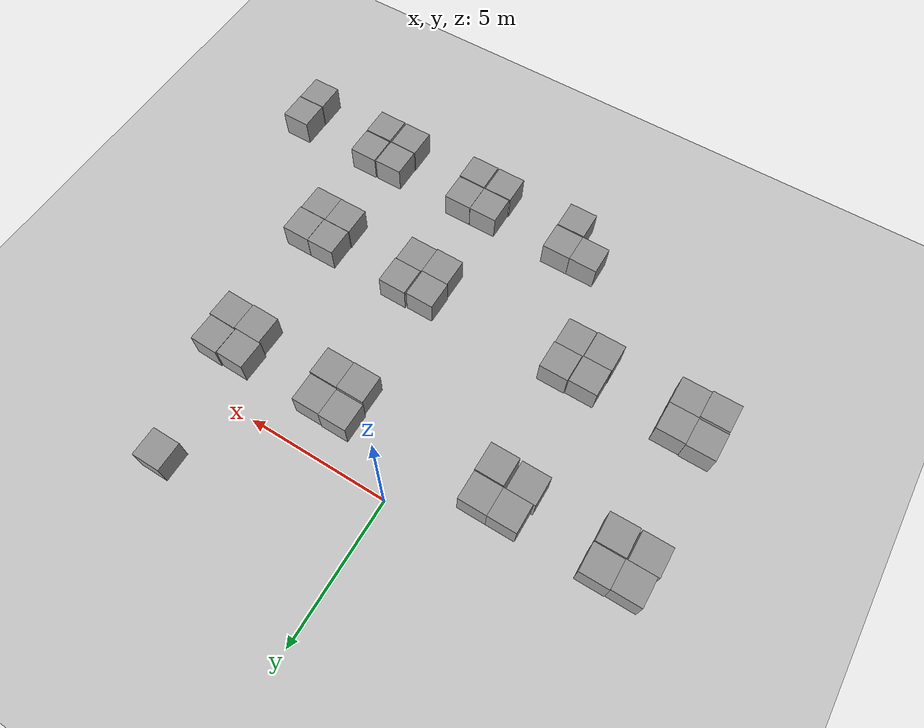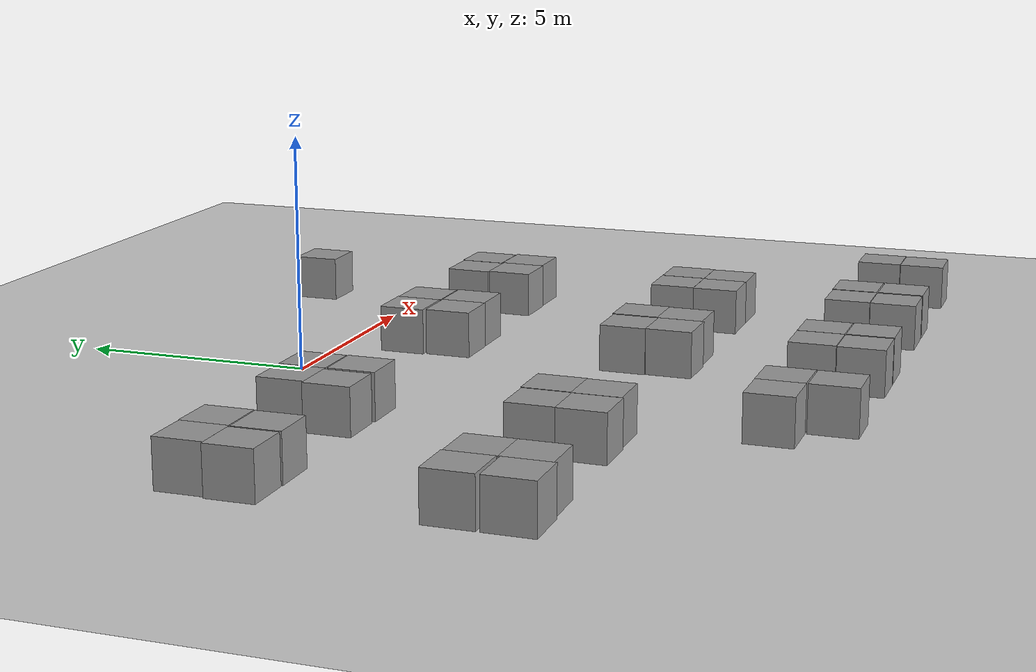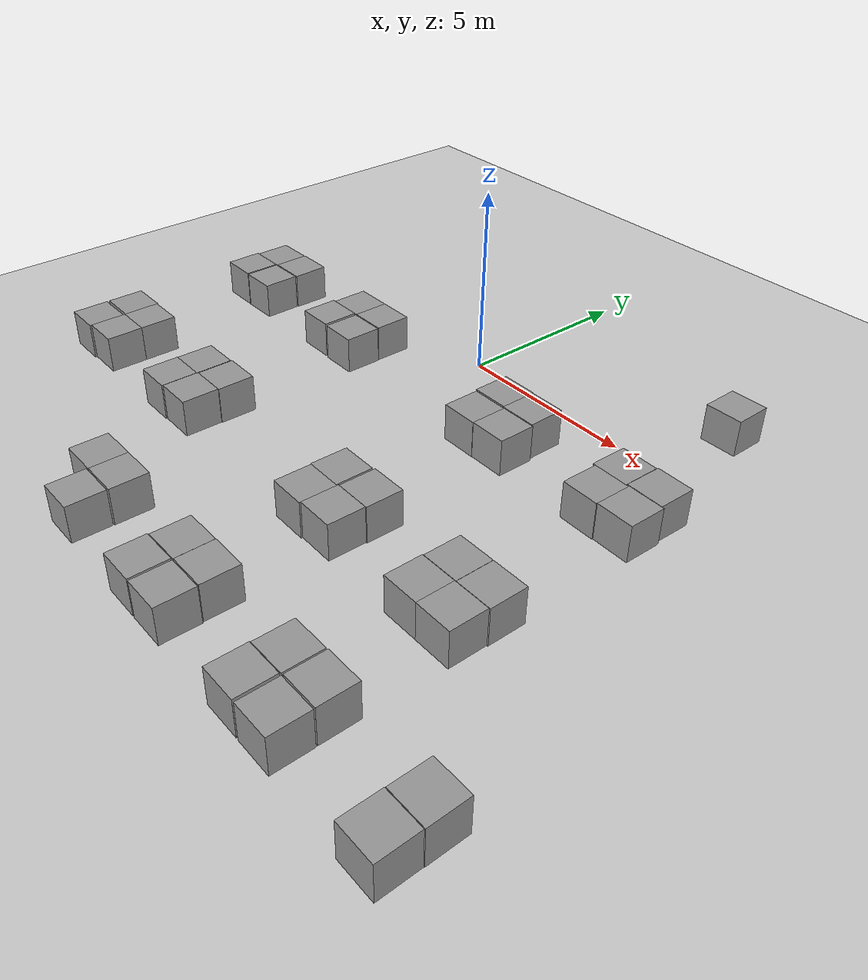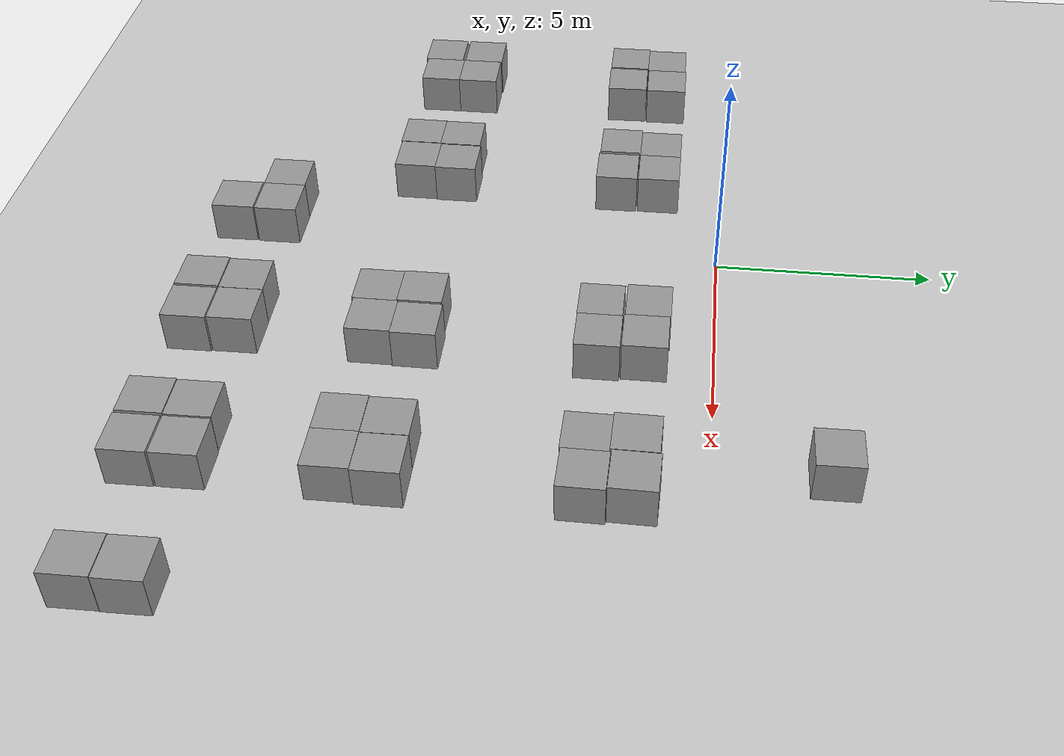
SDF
<sdf version="1.7">
 <world name="default">
  <model name="ground_plane">
   <static>1</static>
   <link name="link">
    <collision name="collision">
     <geometry><plane><normal>0 0 1</normal><size>100 100</size></plane></geometry>
     <surface>
      <contact><collide_bitmask>65535</collide_bitmask></contact>
      <friction><ode><mu>100</mu><mu2>50</mu2></ode></friction>
     </surface>
    </collision>
    <visual name="visual">
     <cast_shadows>0</cast_shadows>
     <geometry><plane><normal>0 0 1</normal><size>100 100</size></plane></geometry>
     <material>
      <script><uri>file://media/materials/scripts/gazebo.material</uri><name>Gazebo/Grey</name></script>
     </material>
    </visual>
   </link>
  </model>
  <model name="unit_box_clone_1_clone_clone_1">
   <pose>6.51987 2.46883 0.499995 -1e-05 0 0.004052</pose>
   <link name="link">
    <inertial>
     <mass>1</mass>
     <inertia>
      <ixx>0.166667</ixx>
      <ixy>0</ixy>
      <ixz>0</ixz>
      <iyy>0.166667</iyy>
      <iyz>0</iyz>
      <izz>0.166667</izz>
     </inertia>
    </inertial>
    <collision name="collision"><geometry><box><size>1 1 1</size></box></geometry></collision>
    <visual name="visual">
     <geometry><box><size>1 1 1</size></box></geometry>
     <material>
      <script><name>Gazebo/Grey</name><uri>file://media/materials/scripts/gazebo.material</uri></script>
     </material>
    </visual>
   </link>
  </model>
  <model name="unit_box_clone_1_clone_clone_2">
   <pose>7.48276 -7.51491 0.499995 1e-05 -0 8e-06</pose>
   <link name="link">
    <inertial>
     <mass>1</mass>
     <inertia>
      <ixx>0.166667</ixx>
      <ixy>0</ixy>
      <ixz>0</ixz>
      <iyy>0.166667</iyy>
      <iyz>0</iyz>
      <izz>0.166667</izz>
     </inertia>
    </inertial>
    <collision name="collision"><geometry><box><size>1 1 1</size></box></geometry></collision>
    <visual name="visual">
     <geometry><box><size>1 1 1</size></box></geometry>
     <material>
      <script><name>Gazebo/Grey</name><uri>file://media/materials/scripts/gazebo.material</uri></script>
     </material>
    </visual>
   </link>
  </model>
  <model name="unit_box_clone_1_clone_clone_2_clone">
   <pose>6.48274 -7.51491 0.499995 0 -1e-05 6e-06</pose>
   <link name="link">
    <inertial>
     <mass>1</mass>
     <inertia>
      <ixx>0.166667</ixx>
      <ixy>0</ixy>
      <ixz>0</ixz>
      <iyy>0.166667</iyy>
      <iyz>0</iyz>
      <izz>0.166667</izz>
     </inertia>
    </inertial>
    <collision name="collision"><geometry><box><size>1 1 1</size></box></geometry></collision>
    <visual name="visual">
     <geometry><box><size>1 1 1</size></box></geometry>
     <material>
      <script><name>Gazebo/Grey</name><uri>file://media/materials/scripts/gazebo.material</uri></script>
     </material>
    </visual>
   </link>
  </model>
  <model name="unit_box_clone_1_clone_clone_2_clone_0">
   <pose>7.5119 -6.50947 0.499995 0 -1e-05 0</pose>
   <link name="link">
    <inertial>
     <mass>1</mass>
     <inertia>
      <ixx>0.166667</ixx>
      <ixy>0</ixy>
      <ixz>0</ixz>
      <iyy>0.166667</iyy>
      <iyz>0</iyz>
      <izz>0.166667</izz>
     </inertia>
    </inertial>
    <collision name="collision"><geometry><box><size>1 1 1</size></box></geometry></collision>
    <visual name="visual">
     <geometry><box><size>1 1 1</size></box></geometry>
     <material>
      <script><name>Gazebo/Grey</name><uri>file://media/materials/scripts/gazebo.material</uri></script>
     </material>
    </visual>
   </link>
  </model>
  <model name="unit_box_clone_1_clone_clone_2_clone_1">
   <pose>6.50647 -6.50947 0.499995 0 -1e-05 0</pose>
   <link name="link">
    <inertial>
     <mass>1</mass>
     <inertia>
      <ixx>0.166667</ixx>
      <ixy>0</ixy>
      <ixz>0</ixz>
      <iyy>0.166667</iyy>
      <iyz>0</iyz>
      <izz>0.166667</izz>
     </inertia>
    </inertial>
    <collision name="collision"><geometry><box><size>1 1 1</size></box></geometry></collision>
    <visual name="visual">
     <geometry><box><size>1 1 1</size></box></geometry>
     <material>
      <script><name>Gazebo/Grey</name><uri>file://media/materials/scripts/gazebo.material</uri></script>
     </material>
    </visual>
   </link>
  </model>
  <model name="unit_box_clone_1_clone_clone_2_clone_2">
   <pose>7.54327 -2.5164 0.499995 -1e-05 0 -0.018265</pose>
   <link name="link">
    <inertial>
     <mass>1</mass>
     <inertia>
      <ixx>0.166667</ixx>
      <ixy>0</ixy>
      <ixz>0</ixz>
      <iyy>0.166667</iyy>
      <iyz>0</iyz>
      <izz>0.166667</izz>
     </inertia>
    </inertial>
    <collision name="collision"><geometry><box><size>1 1 1</size></box></geometry></collision>
    <visual name="visual">
     <geometry><box><size>1 1 1</size></box></geometry>
     <material>
      <script><name>Gazebo/Grey</name><uri>file://media/materials/scripts/gazebo.material</uri></script>
     </material>
    </visual>
   </link>
  </model>
  <model name="unit_box_clone_1_clone_clone_2_clone_3">
   <pose>6.54296 -2.52368 0.499995 -0 -1e-05 -0.01826</pose>
   <link name="link">
    <inertial>
     <mass>1</mass>
     <inertia>
      <ixx>0.166667</ixx>
      <ixy>0</ixy>
      <ixz>0</ixz>
      <iyy>0.166667</iyy>
      <iyz>0</iyz>
      <izz>0.166667</izz>
     </inertia>
    </inertial>
    <collision name="collision"><geometry><box><size>1 1 1</size></box></geometry></collision>
    <visual name="visual">
     <geometry><box><size>1 1 1</size></box></geometry>
     <material>
      <script><name>Gazebo/Grey</name><uri>file://media/materials/scripts/gazebo.material</uri></script>
     </material>
    </visual>
   </link>
  </model>
  <model name="unit_box_clone_1_clone_clone_2_clone_4">
   <pose>7.49705 -1.50526 0.499995 -1e-05 0 -0.023231</pose>
   <link name="link">
    <inertial>
     <mass>1</mass>
     <inertia>
      <ixx>0.166667</ixx>
      <ixy>0</ixy>
      <ixz>0</ixz>
      <iyy>0.166667</iyy>
      <iyz>0</iyz>
      <izz>0.166667</izz>
     </inertia>
    </inertial>
    <collision name="collision"><geometry><box><size>1 1 1</size></box></geometry></collision>
    <visual name="visual">
     <geometry><box><size>1 1 1</size></box></geometry>
     <material>
      <script><name>Gazebo/Grey</name><uri>file://media/materials/scripts/gazebo.material</uri></script>
     </material>
    </visual>
   </link>
  </model>
  <model name="unit_box_clone_1_clone_clone_2_clone_5">
   <pose>6.48657 -1.52244 0.499995 1e-05 -0 -0.018282</pose>
   <link name="link">
    <inertial>
     <mass>1</mass>
     <inertia>
      <ixx>0.166667</ixx>
      <ixy>0</ixy>
      <ixz>0</ixz>
      <iyy>0.166667</iyy>
      <iyz>0</iyz>
      <izz>0.166667</izz>
     </inertia>
    </inertial>
    <collision name="collision"><geometry><box><size>1 1 1</size></box></geometry></collision>
    <visual name="visual">
     <geometry><box><size>1 1 1</size></box></geometry>
     <material>
      <script><name>Gazebo/Grey</name><uri>file://media/materials/scripts/gazebo.material</uri></script>
     </material>
    </visual>
   </link>
  </model>
  <model name="unit_box_clone_0_clone_7">
   <pose>3.50174 -1.50026 0.499995 0 -1e-05 -0.002186</pose>
   <link name="link">
    <inertial>
     <mass>1</mass>
     <inertia>
      <ixx>0.166667</ixx>
      <ixy>0</ixy>
      <ixz>0</ixz>
      <iyy>0.166667</iyy>
      <iyz>0</iyz>
      <izz>0.166667</izz>
     </inertia>
    </inertial>
    <collision name="collision"><geometry><box><size>1 1 1</size></box></geometry></collision>
    <visual name="visual">
     <geometry><box><size>1 1 1</size></box></geometry>
     <material>
      <script><name>Gazebo/Grey</name><uri>file://media/materials/scripts/gazebo.material</uri></script>
     </material>
    </visual>
   </link>
  </model>
  <model name="unit_box_clone_0_clone_8">
   <pose>2.50178 -1.47971 0.499995 -0 -1e-05 -0.002182</pose>
   <link name="link">
    <inertial>
     <mass>1</mass>
     <inertia>
      <ixx>0.166667</ixx>
      <ixy>0</ixy>
      <ixz>0</ixz>
      <iyy>0.166667</iyy>
      <iyz>0</iyz>
      <izz>0.166667</izz>
     </inertia>
    </inertial>
    <collision name="collision"><geometry><box><size>1 1 1</size></box></geometry></collision>
    <visual name="visual">
     <geometry><box><size>1 1 1</size></box></geometry>
     <material>
      <script><name>Gazebo/Grey</name><uri>file://media/materials/scripts/gazebo.material</uri></script>
     </material>
    </visual>
   </link>
  </model>
  <model name="unit_box_clone_0_clone_9">
   <pose>3.55665 -2.52621 0.499995 -0 1e-05 -0.005196</pose>
   <link name="link">
    <inertial>
     <mass>1</mass>
     <inertia>
      <ixx>0.166667</ixx>
      <ixy>0</ixy>
      <ixz>0</ixz>
      <iyy>0.166667</iyy>
      <iyz>0</iyz>
      <izz>0.166667</izz>
     </inertia>
    </inertial>
    <collision name="collision"><geometry><box><size>1 1 1</size></box></geometry></collision>
    <visual name="visual">
     <geometry><box><size>1 1 1</size></box></geometry>
     <material>
      <script><name>Gazebo/Grey</name><uri>file://media/materials/scripts/gazebo.material</uri></script>
     </material>
    </visual>
   </link>
  </model>
  <model name="unit_box_clone_0_clone_10">
   <pose>2.55658 -2.53131 0.499995 0 -1e-05 -0.005201</pose>
   <link name="link">
    <inertial>
     <mass>1</mass>
     <inertia>
      <ixx>0.166667</ixx>
      <ixy>0</ixy>
      <ixz>0</ixz>
      <iyy>0.166667</iyy>
      <iyz>0</iyz>
      <izz>0.166667</izz>
     </inertia>
    </inertial>
    <collision name="collision"><geometry><box><size>1 1 1</size></box></geometry></collision>
    <visual name="visual">
     <geometry><box><size>1 1 1</size></box></geometry>
     <material>
      <script><name>Gazebo/Grey</name><uri>file://media/materials/scripts/gazebo.material</uri></script>
     </material>
    </visual>
   </link>
  </model>
  <model name="unit_box_clone_0_clone_11">
   <pose>3.56399 -6.48035 0.499995 1e-05 -0 -0.006849</pose>
   <link name="link">
    <inertial>
     <mass>1</mass>
     <inertia>
      <ixx>0.166667</ixx>
      <ixy>0</ixy>
      <ixz>0</ixz>
      <iyy>0.166667</iyy>
      <iyz>0</iyz>
      <izz>0.166667</izz>
     </inertia>
    </inertial>
    <collision name="collision"><geometry><box><size>1 1 1</size></box></geometry></collision>
    <visual name="visual">
     <geometry><box><size>1 1 1</size></box></geometry>
     <material>
      <script><name>Gazebo/Grey</name><uri>file://media/materials/scripts/gazebo.material</uri></script>
     </material>
    </visual>
   </link>
  </model>
  <model name="unit_box_clone_0_clone_12">
   <pose>3.53165 -7.48098 0.499995 1e-05 -0 -0.008576</pose>
   <link name="link">
    <inertial>
     <mass>1</mass>
     <inertia>
      <ixx>0.166667</ixx>
      <ixy>0</ixy>
      <ixz>0</ixz>
      <iyy>0.166667</iyy>
      <iyz>0</iyz>
      <izz>0.166667</izz>
     </inertia>
    </inertial>
    <collision name="collision"><geometry><box><size>1 1 1</size></box></geometry></collision>
    <visual name="visual">
     <geometry><box><size>1 1 1</size></box></geometry>
     <material>
      <script><name>Gazebo/Grey</name><uri>file://media/materials/scripts/gazebo.material</uri></script>
     </material>
    </visual>
   </link>
  </model>
  <model name="unit_box_clone_0_clone_13">
   <pose>2.51333 -6.51216 0.499995 1e-05 -0 -0.008823</pose>
   <link name="link">
    <inertial>
     <mass>1</mass>
     <inertia>
      <ixx>0.166667</ixx>
      <ixy>0</ixy>
      <ixz>0</ixz>
      <iyy>0.166667</iyy>
      <iyz>0</iyz>
      <izz>0.166667</izz>
     </inertia>
    </inertial>
    <collision name="collision"><geometry><box><size>1 1 1</size></box></geometry></collision>
    <visual name="visual">
     <geometry><box><size>1 1 1</size></box></geometry>
     <material>
      <script><name>Gazebo/Grey</name><uri>file://media/materials/scripts/gazebo.material</uri></script>
     </material>
    </visual>
   </link>
  </model>
  <model name="unit_box_clone_0_clone_14">
   <pose>2.53108 -7.51237 0.499995 0 1e-05 -0.008817</pose>
   <link name="link">
    <inertial>
     <mass>1</mass>
     <inertia>
      <ixx>0.166667</ixx>
      <ixy>0</ixy>
      <ixz>0</ixz>
      <iyy>0.166667</iyy>
      <iyz>0</iyz>
      <izz>0.166667</izz>
     </inertia>
    </inertial>
    <collision name="collision"><geometry><box><size>1 1 1</size></box></geometry></collision>
    <visual name="visual">
     <geometry><box><size>1 1 1</size></box></geometry>
     <material>
      <script><name>Gazebo/Grey</name><uri>file://media/materials/scripts/gazebo.material</uri></script>
     </material>
    </visual>
   </link>
  </model>
  <model name="unit_box_clone_0_clone_16_clone_11">
   <pose>-2.48826 -1.47823 0.499995 1e-05 0 -6.3e-05</pose>
   <link name="link">
    <inertial>
     <mass>1</mass>
     <inertia>
      <ixx>0.166667</ixx>
      <ixy>0</ixy>
      <ixz>0</ixz>
      <iyy>0.166667</iyy>
      <iyz>0</iyz>
      <izz>0.166667</izz>
     </inertia>
    </inertial>
    <collision name="collision"><geometry><box><size>1 1 1</size></box></geometry></collision>
    <visual name="visual">
     <geometry><box><size>1 1 1</size></box></geometry>
     <material>
      <script><name>Gazebo/Grey</name><uri>file://media/materials/scripts/gazebo.material</uri></script>
     </material>
    </visual>
   </link>
  </model>
  <model name="unit_box_clone_0_clone_16_clone_12">
   <pose>-2.47297 -2.50683 0.499995 1e-05 -0 -0.00013</pose>
   <link name="link">
    <inertial>
     <mass>1</mass>
     <inertia>
      <ixx>0.166667</ixx>
      <ixy>0</ixy>
      <ixz>0</ixz>
      <iyy>0.166667</iyy>
      <iyz>0</iyz>
      <izz>0.166667</izz>
     </inertia>
    </inertial>
    <collision name="collision"><geometry><box><size>1 1 1</size></box></geometry></collision>
    <visual name="visual">
     <geometry><box><size>1 1 1</size></box></geometry>
     <material>
      <script><name>Gazebo/Grey</name><uri>file://media/materials/scripts/gazebo.material</uri></script>
     </material>
    </visual>
   </link>
  </model>
  <model name="unit_box_clone_0_clone_16_clone_13">
   <pose>-3.4883 -1.4782 0.499995 1e-05 0 -0.000127</pose>
   <link name="link">
    <inertial>
     <mass>1</mass>
     <inertia>
      <ixx>0.166667</ixx>
      <ixy>0</ixy>
      <ixz>0</ixz>
      <iyy>0.166667</iyy>
      <iyz>0</iyz>
      <izz>0.166667</izz>
     </inertia>
    </inertial>
    <collision name="collision"><geometry><box><size>1 1 1</size></box></geometry></collision>
    <visual name="visual">
     <geometry><box><size>1 1 1</size></box></geometry>
     <material>
      <script><name>Gazebo/Grey</name><uri>file://media/materials/scripts/gazebo.material</uri></script>
     </material>
    </visual>
   </link>
  </model>
  <model name="unit_box_clone_0_clone_16_clone_14">
   <pose>-3.56296 -2.47821 0.499995 0 1e-05 -0.000167</pose>
   <link name="link">
    <inertial>
     <mass>1</mass>
     <inertia>
      <ixx>0.166667</ixx>
      <ixy>0</ixy>
      <ixz>0</ixz>
      <iyy>0.166667</iyy>
      <iyz>0</iyz>
      <izz>0.166667</izz>
     </inertia>
    </inertial>
    <collision name="collision"><geometry><box><size>1 1 1</size></box></geometry></collision>
    <visual name="visual">
     <geometry><box><size>1 1 1</size></box></geometry>
     <material>
      <script><name>Gazebo/Grey</name><uri>file://media/materials/scripts/gazebo.material</uri></script>
     </material>
    </visual>
   </link>
  </model>
  <model name="unit_box_clone_0_clone_16_clone_15">
   <pose>-2.4909 -6.50485 0.499995 -0 1e-05 -0.004243</pose>
   <link name="link">
    <inertial>
     <mass>1</mass>
     <inertia>
      <ixx>0.166667</ixx>
      <ixy>0</ixy>
      <ixz>0</ixz>
      <iyy>0.166667</iyy>
      <iyz>0</iyz>
      <izz>0.166667</izz>
     </inertia>
    </inertial>
    <collision name="collision"><geometry><box><size>1 1 1</size></box></geometry></collision>
    <visual name="visual">
     <geometry><box><size>1 1 1</size></box></geometry>
     <material>
      <script><name>Gazebo/Grey</name><uri>file://media/materials/scripts/gazebo.material</uri></script>
     </material>
    </visual>
   </link>
  </model>
  <model name="unit_box_clone_0_clone_16_clone_16">
   <pose>-2.51952 -7.50478 0.499995 0 -1e-05 -0.004305</pose>
   <link name="link">
    <inertial>
     <mass>1</mass>
     <inertia>
      <ixx>0.166667</ixx>
      <ixy>0</ixy>
      <ixz>0</ixz>
      <iyy>0.166667</iyy>
      <iyz>0</iyz>
      <izz>0.166667</izz>
     </inertia>
    </inertial>
    <collision name="collision"><geometry><box><size>1 1 1</size></box></geometry></collision>
    <visual name="visual">
     <geometry><box><size>1 1 1</size></box></geometry>
     <material>
      <script><name>Gazebo/Grey</name><uri>file://media/materials/scripts/gazebo.material</uri></script>
     </material>
    </visual>
   </link>
  </model>
  <model name="unit_box_clone_0_clone_16_clone_17">
   <pose>-3.51522 -6.53044 0.499995 0 1e-05 -0.004559</pose>
   <link name="link">
    <inertial>
     <mass>1</mass>
     <inertia>
      <ixx>0.166667</ixx>
      <ixy>0</ixy>
      <ixz>0</ixz>
      <iyy>0.166667</iyy>
      <iyz>0</iyz>
      <izz>0.166667</izz>
     </inertia>
    </inertial>
    <collision name="collision"><geometry><box><size>1 1 1</size></box></geometry></collision>
    <visual name="visual">
     <geometry><box><size>1 1 1</size></box></geometry>
     <material>
      <script><name>Gazebo/Grey</name><uri>file://media/materials/scripts/gazebo.material</uri></script>
     </material>
    </visual>
   </link>
  </model>
  <model name="unit_box_clone_0_clone_16_clone_18">
   <pose>-3.53198 -7.53041 0.499995 0 -1e-05 -0.004522</pose>
   <link name="link">
    <inertial>
     <mass>1</mass>
     <inertia>
      <ixx>0.166667</ixx>
      <ixy>0</ixy>
      <ixz>0</ixz>
      <iyy>0.166667</iyy>
      <iyz>0</iyz>
      <izz>0.166667</izz>
     </inertia>
    </inertial>
    <collision name="collision"><geometry><box><size>1 1 1</size></box></geometry></collision>
    <visual name="visual">
     <geometry><box><size>1 1 1</size></box></geometry>
     <material>
      <script><name>Gazebo/Grey</name><uri>file://media/materials/scripts/gazebo.material</uri></script>
     </material>
    </visual>
   </link>
  </model>
  <model name="unit_box_clone_0_clone_16_clone_19">
   <pose>-6.47351 -1.46236 0.499995 -0 -1e-05 0.004737</pose>
   <link name="link">
    <inertial>
     <mass>1</mass>
     <inertia>
      <ixx>0.166667</ixx>
      <ixy>0</ixy>
      <ixz>0</ixz>
      <iyy>0.166667</iyy>
      <iyz>0</iyz>
      <izz>0.166667</izz>
     </inertia>
    </inertial>
    <collision name="collision"><geometry><box><size>1 1 1</size></box></geometry></collision>
    <visual name="visual">
     <geometry><box><size>1 1 1</size></box></geometry>
     <material>
      <script><name>Gazebo/Grey</name><uri>file://media/materials/scripts/gazebo.material</uri></script>
     </material>
    </visual>
   </link>
  </model>
  <model name="unit_box_clone_0_clone_16_clone_20">
   <pose>-7.47354 -1.48725 0.5 0 -0 0.004471</pose>
   <link name="link">
    <inertial>
     <mass>1</mass>
     <inertia>
      <ixx>0.166667</ixx>
      <ixy>0</ixy>
      <ixz>0</ixz>
      <iyy>0.166667</iyy>
      <iyz>0</iyz>
      <izz>0.166667</izz>
     </inertia>
    </inertial>
    <collision name="collision"><geometry><box><size>1 1 1</size></box></geometry></collision>
    <visual name="visual">
     <geometry><box><size>1 1 1</size></box></geometry>
     <material>
      <script><name>Gazebo/Grey</name><uri>file://media/materials/scripts/gazebo.material</uri></script>
     </material>
    </visual>
   </link>
  </model>
  <model name="unit_box_clone_0_clone_16_clone_21">
   <pose>-6.48631 -2.49199 0.499995 0 1e-05 0.013137</pose>
   <link name="link">
    <inertial>
     <mass>1</mass>
     <inertia>
      <ixx>0.166667</ixx>
      <ixy>0</ixy>
      <ixz>0</ixz>
      <iyy>0.166667</iyy>
      <iyz>0</iyz>
      <izz>0.166667</izz>
     </inertia>
    </inertial>
    <collision name="collision"><geometry><box><size>1 1 1</size></box></geometry></collision>
    <visual name="visual">
     <geometry><box><size>1 1 1</size></box></geometry>
     <material>
      <script><name>Gazebo/Grey</name><uri>file://media/materials/scripts/gazebo.material</uri></script>
     </material>
    </visual>
   </link>
  </model>
  <model name="unit_box_clone_0_clone_16_clone_22">
   <pose>-7.5313 -2.48775 0.499995 1e-05 -0 0.003976</pose>
   <link name="link">
    <inertial>
     <mass>1</mass>
     <inertia>
      <ixx>0.166667</ixx>
      <ixy>0</ixy>
      <ixz>0</ixz>
      <iyy>0.166667</iyy>
      <iyz>0</iyz>
      <izz>0.166667</izz>
     </inertia>
    </inertial>
    <collision name="collision"><geometry><box><size>1 1 1</size></box></geometry></collision>
    <visual name="visual">
     <geometry><box><size>1 1 1</size></box></geometry>
     <material>
      <script><name>Gazebo/Grey</name><uri>file://media/materials/scripts/gazebo.material</uri></script>
     </material>
    </visual>
   </link>
  </model>
  <model name="unit_box_clone_0_clone_16_clone_23">
   <pose>-6.50917 -6.5218 0.499995 -1e-05 -0 -0.002286</pose>
   <link name="link">
    <inertial>
     <mass>1</mass>
     <inertia>
      <ixx>0.166667</ixx>
      <ixy>0</ixy>
      <ixz>0</ixz>
      <iyy>0.166667</iyy>
      <iyz>0</iyz>
      <izz>0.166667</izz>
     </inertia>
    </inertial>
    <collision name="collision"><geometry><box><size>1 1 1</size></box></geometry></collision>
    <visual name="visual">
     <geometry><box><size>1 1 1</size></box></geometry>
     <material>
      <script><name>Gazebo/Grey</name><uri>file://media/materials/scripts/gazebo.material</uri></script>
     </material>
    </visual>
   </link>
  </model>
  <model name="unit_box_clone_0_clone_16_clone_24">
   <pose>-6.51146 -7.52182 0.499995 -1e-05 -0 -0.002304</pose>
   <link name="link">
    <inertial>
     <mass>1</mass>
     <inertia>
      <ixx>0.166667</ixx>
      <ixy>0</ixy>
      <ixz>0</ixz>
      <iyy>0.166667</iyy>
      <iyz>0</iyz>
      <izz>0.166667</izz>
     </inertia>
    </inertial>
    <collision name="collision"><geometry><box><size>1 1 1</size></box></geometry></collision>
    <visual name="visual">
     <geometry><box><size>1 1 1</size></box></geometry>
     <material>
      <script><name>Gazebo/Grey</name><uri>file://media/materials/scripts/gazebo.material</uri></script>
     </material>
    </visual>
   </link>
  </model>
  <model name="unit_box_clone_0_clone_16_clone_25">
   <pose>-7.50915 -6.49506 0.499995 1e-05 -0 -0.002276</pose>
   <link name="link">
    <inertial>
     <mass>1</mass>
     <inertia>
      <ixx>0.166667</ixx>
      <ixy>0</ixy>
      <ixz>0</ixz>
      <iyy>0.166667</iyy>
      <iyz>0</iyz>
      <izz>0.166667</izz>
     </inertia>
    </inertial>
    <collision name="collision"><geometry><box><size>1 1 1</size></box></geometry></collision>
    <visual name="visual">
     <geometry><box><size>1 1 1</size></box></geometry>
     <material>
      <script><name>Gazebo/Grey</name><uri>file://media/materials/scripts/gazebo.material</uri></script>
     </material>
    </visual>
   </link>
  </model>
  <model name="unit_box_clone_0_clone_16_clone_26">
   <pose>-7.51163 -7.56861 0.499995 1e-05 0 -0.002293</pose>
   <link name="link">
    <inertial>
     <mass>1</mass>
     <inertia>
      <ixx>0.166667</ixx>
      <ixy>0</ixy>
      <ixz>0</ixz>
      <iyy>0.166667</iyy>
      <iyz>0</iyz>
      <izz>0.166667</izz>
     </inertia>
    </inertial>
    <collision name="collision"><geometry><box><size>1 1 1</size></box></geometry></collision>
    <visual name="visual">
     <geometry><box><size>1 1 1</size></box></geometry>
     <material>
      <script><name>Gazebo/Grey</name><uri>file://media/materials/scripts/gazebo.material</uri></script>
     </material>
    </visual>
   </link>
  </model>
  <model name="unit_box_clone_3_clone_5">
   <pose>7.43558 -10.533 0.499995 1e-05 -0 0.002663</pose>
   <link name="link">
    <inertial>
     <mass>1</mass>
     <inertia>
      <ixx>0.166667</ixx>
      <ixy>0</ixy>
      <ixz>0</ixz>
      <iyy>0.166667</iyy>
      <iyz>0</iyz>
      <izz>0.166667</izz>
     </inertia>
    </inertial>
    <collision name="collision"><geometry><box><size>1 1 1</size></box></geometry></collision>
    <visual name="visual">
     <geometry><box><size>1 1 1</size></box></geometry>
     <material>
      <script><name>Gazebo/Grey</name><uri>file://media/materials/scripts/gazebo.material</uri></script>
     </material>
    </visual>
   </link>
  </model>
  <model name="unit_box_clone_3_clone_6">
   <pose>7.44548 -11.568 0.499995 0 -1e-05 0.002663</pose>
   <link name="link">
    <inertial>
     <mass>1</mass>
     <inertia>
      <ixx>0.166667</ixx>
      <ixy>0</ixy>
      <ixz>0</ixz>
      <iyy>0.166667</iyy>
      <iyz>0</iyz>
      <izz>0.166667</izz>
     </inertia>
    </inertial>
    <collision name="collision"><geometry><box><size>1 1 1</size></box></geometry></collision>
    <visual name="visual">
     <geometry><box><size>1 1 1</size></box></geometry>
     <material>
      <script><name>Gazebo/Grey</name><uri>file://media/materials/scripts/gazebo.material</uri></script>
     </material>
    </visual>
   </link>
  </model>
  <model name="unit_box_clone_3_clone_7">
   <pose>6.39684 -10.5526 0.499995 1e-05 -0 0.002663</pose>
   <link name="link">
    <inertial>
     <mass>1</mass>
     <inertia>
      <ixx>0.166667</ixx>
      <ixy>0</ixy>
      <ixz>0</ixz>
      <iyy>0.166667</iyy>
      <iyz>0</iyz>
      <izz>0.166667</izz>
     </inertia>
    </inertial>
    <collision name="collision"><geometry><box><size>1 1 1</size></box></geometry></collision>
    <visual name="visual">
     <geometry><box><size>1 1 1</size></box></geometry>
     <material>
      <script><name>Gazebo/Grey</name><uri>file://media/materials/scripts/gazebo.material</uri></script>
     </material>
    </visual>
   </link>
  </model>
  <model name="unit_box_clone_3_clone_8">
   <pose>6.37957 -11.5672 0.499995 -1e-05 -0 0.002663</pose>
   <link name="link">
    <inertial>
     <mass>1</mass>
     <inertia>
      <ixx>0.166667</ixx>
      <ixy>0</ixy>
      <ixz>0</ixz>
      <iyy>0.166667</iyy>
      <iyz>0</iyz>
      <izz>0.166667</izz>
     </inertia>
    </inertial>
    <collision name="collision"><geometry><box><size>1 1 1</size></box></geometry></collision>
    <visual name="visual">
     <geometry><box><size>1 1 1</size></box></geometry>
     <material>
      <script><name>Gazebo/Grey</name><uri>file://media/materials/scripts/gazebo.material</uri></script>
     </material>
    </visual>
   </link>
  </model>
  <model name="unit_box_clone_3_clone_9">
   <pose>3.45985 -10.5326 0.499995 1e-05 -0 0.002663</pose>
   <link name="link">
    <inertial>
     <mass>1</mass>
     <inertia>
      <ixx>0.166667</ixx>
      <ixy>0</ixy>
      <ixz>0</ixz>
      <iyy>0.166667</iyy>
      <iyz>0</iyz>
      <izz>0.166667</izz>
     </inertia>
    </inertial>
    <collision name="collision"><geometry><box><size>1 1 1</size></box></geometry></collision>
    <visual name="visual">
     <geometry><box><size>1 1 1</size></box></geometry>
     <material>
      <script><name>Gazebo/Grey</name><uri>file://media/materials/scripts/gazebo.material</uri></script>
     </material>
    </visual>
   </link>
  </model>
  <model name="unit_box_clone_3_clone_10">
   <pose>2.45731 -10.5421 0.499995 0 -1e-05 0.002663</pose>
   <link name="link">
    <inertial>
     <mass>1</mass>
     <inertia>
      <ixx>0.166667</ixx>
      <ixy>0</ixy>
      <ixz>0</ixz>
      <iyy>0.166667</iyy>
      <iyz>0</iyz>
      <izz>0.166667</izz>
     </inertia>
    </inertial>
    <collision name="collision"><geometry><box><size>1 1 1</size></box></geometry></collision>
    <visual name="visual">
     <geometry><box><size>1 1 1</size></box></geometry>
     <material>
      <script><name>Gazebo/Grey</name><uri>file://media/materials/scripts/gazebo.material</uri></script>
     </material>
    </visual>
   </link>
  </model>
  <model name="unit_box_clone_3_clone_11">
   <pose>-1.44883 -10.5247 0.5 0 0 -0.000204</pose>
   <link name="link">
    <inertial>
     <mass>1</mass>
     <inertia>
      <ixx>0.166667</ixx>
      <ixy>0</ixy>
      <ixz>0</ixz>
      <iyy>0.166667</iyy>
      <iyz>0</iyz>
      <izz>0.166667</izz>
     </inertia>
    </inertial>
    <collision name="collision"><geometry><box><size>1 1 1</size></box></geometry></collision>
    <visual name="visual">
     <geometry><box><size>1 1 1</size></box></geometry>
     <material>
      <script><name>Gazebo/Grey</name><uri>file://media/materials/scripts/gazebo.material</uri></script>
     </material>
    </visual>
   </link>
  </model>
  <model name="unit_box_clone_3_clone_12">
   <pose>-0.448831 -10.5184 0.5 0 -0 -0.000206</pose>
   <link name="link">
    <inertial>
     <mass>1</mass>
     <inertia>
      <ixx>0.166667</ixx>
      <ixy>0</ixy>
      <ixz>0</ixz>
      <iyy>0.166667</iyy>
      <iyz>0</iyz>
      <izz>0.166667</izz>
     </inertia>
    </inertial>
    <collision name="collision"><geometry><box><size>1 1 1</size></box></geometry></collision>
    <visual name="visual">
     <geometry><box><size>1 1 1</size></box></geometry>
     <material>
      <script><name>Gazebo/Grey</name><uri>file://media/materials/scripts/gazebo.material</uri></script>
     </material>
    </visual>
   </link>
  </model>
  <model name="unit_box_clone_3_clone_13">
   <pose>-0.459973 -11.5523 0.499995 1e-05 -0 0.002663</pose>
   <link name="link">
    <inertial>
     <mass>1</mass>
     <inertia>
      <ixx>0.166667</ixx>
      <ixy>0</ixy>
      <ixz>0</ixz>
      <iyy>0.166667</iyy>
      <iyz>0</iyz>
      <izz>0.166667</izz>
     </inertia>
    </inertial>
    <collision name="collision"><geometry><box><size>1 1 1</size></box></geometry></collision>
    <visual name="visual">
     <geometry><box><size>1 1 1</size></box></geometry>
     <material>
      <script><name>Gazebo/Grey</name><uri>file://media/materials/scripts/gazebo.material</uri></script>
     </material>
    </visual>
   </link>
  </model>
  <model name="unit_box_clone_3_clone_14">
   <pose>2.42726 -11.5612 0.499995 -1e-05 -0 0.002663</pose>
   <link name="link">
    <inertial>
     <mass>1</mass>
     <inertia>
      <ixx>0.166667</ixx>
      <ixy>0</ixy>
      <ixz>0</ixz>
      <iyy>0.166667</iyy>
      <iyz>0</iyz>
      <izz>0.166667</izz>
     </inertia>
    </inertial>
    <collision name="collision"><geometry><box><size>1 1 1</size></box></geometry></collision>
    <visual name="visual">
     <geometry><box><size>1 1 1</size></box></geometry>
     <material>
      <script><name>Gazebo/Grey</name><uri>file://media/materials/scripts/gazebo.material</uri></script>
     </material>
    </visual>
   </link>
  </model>
  <model name="unit_box_clone_3_clone_15">
   <pose>3.4836 -11.5594 0.499995 1e-05 -0 0.002663</pose>
   <link name="link">
    <inertial>
     <mass>1</mass>
     <inertia>
      <ixx>0.166667</ixx>
      <ixy>0</ixy>
      <ixz>0</ixz>
      <iyy>0.166667</iyy>
      <iyz>0</iyz>
      <izz>0.166667</izz>
     </inertia>
    </inertial>
    <collision name="collision"><geometry><box><size>1 1 1</size></box></geometry></collision>
    <visual name="visual">
     <geometry><box><size>1 1 1</size></box></geometry>
     <material>
      <script><name>Gazebo/Grey</name><uri>file://media/materials/scripts/gazebo.material</uri></script>
     </material>
    </visual>
   </link>
  </model>
  <model name="unit_box_clone_3_clone_16">
   <pose>10.4793 -10.5882 0.499995 0 -1e-05 0.002663</pose>
   <link name="link">
    <inertial>
     <mass>1</mass>
     <inertia>
      <ixx>0.166667</ixx>
      <ixy>0</ixy>
      <ixz>0</ixz>
      <iyy>0.166667</iyy>
      <iyz>0</iyz>
      <izz>0.166667</izz>
     </inertia>
    </inertial>
    <collision name="collision"><geometry><box><size>1 1 1</size></box></geometry></collision>
    <visual name="visual">
     <geometry><box><size>1 1 1</size></box></geometry>
     <material>
      <script><name>Gazebo/Grey</name><uri>file://media/materials/scripts/gazebo.material</uri></script>
     </material>
    </visual>
   </link>
  </model>
  <model name="unit_box_clone_3_clone_17">
   <pose>10.4708 -11.6014 0.499995 1e-05 -0 0.002663</pose>
   <link name="link">
    <inertial>
     <mass>1</mass>
     <inertia>
      <ixx>0.166667</ixx>
      <ixy>0</ixy>
      <ixz>0</ixz>
      <iyy>0.166667</iyy>
      <iyz>0</iyz>
      <izz>0.166667</izz>
     </inertia>
    </inertial>
    <collision name="collision"><geometry><box><size>1 1 1</size></box></geometry></collision>
    <visual name="visual">
     <geometry><box><size>1 1 1</size></box></geometry>
     <material>
      <script><name>Gazebo/Grey</name><uri>file://media/materials/scripts/gazebo.material</uri></script>
     </material>
    </visual>
   </link>
  </model>
 </world>
</sdf>
